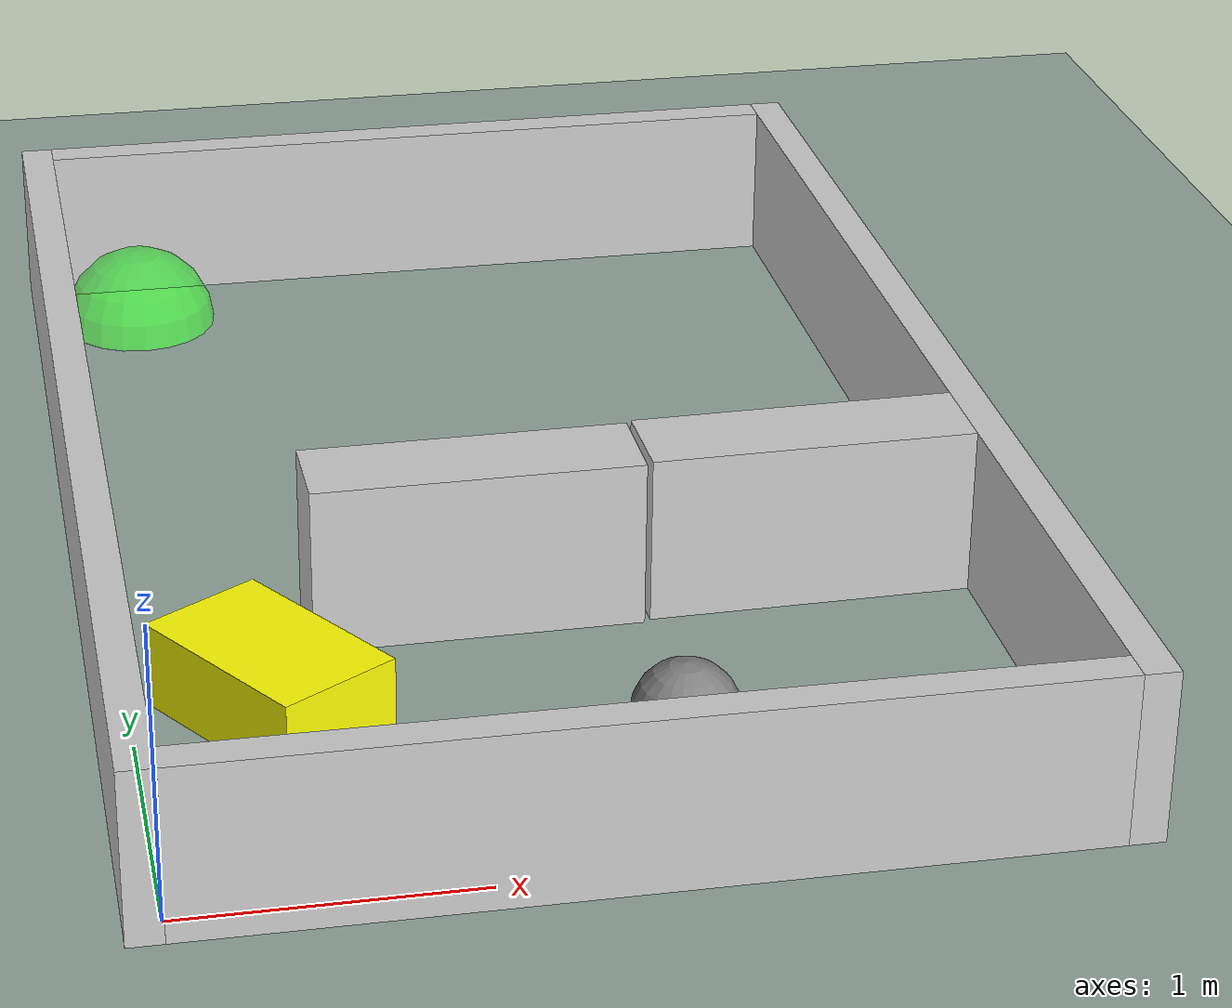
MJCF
<?xml version="1.0" ?>
<mujoco model="generated_environment">
  <option timestep="0.01" integrator="RK4" cone="elliptic"/>
  <default>
    <geom density="1"/>
  </default>
  <asset>
    <texture builtin="gradient" height="3072" rgb1="0.3 0.5 0.7" rgb2="0 0 0" type="skybox" width="512"/>
    <texture builtin="checker" height="300" mark="edge" markrgb="0.8 0.8 0.8" name="groundplane" rgb1="0.2 0.3 0.4" rgb2="0.1 0.2 0.3" type="2d" width="300"/>
    <material name="groundplane" reflectance="0.2" texrepeat="5 5" texture="groundplane" texuniform="true"/>
    <material name="robot" rgba="1.0 1.0 0.0 1.0"/>
  </asset>
  <worldbody>
    <light dir="0 0 -1" directional="true" pos="0 0 1.5"/>
    <geom condim="4" friction="0.5 0.005 0.001" material="groundplane" name="floor" size="0 0 0.05" type="plane"/>
    <body name="walls">
      <geom name="wall_1" condim="4" pos="-0.06 2.325 0.30000000000000004" friction="1 0.005 0.0001" rgba="0.800000011920929 0.800000011920929 0.800000011920929 1.0" size="0.06 2.4450000000000003 0.30000000000000004" type="box"/>
      <geom name="wall_2" condim="4" pos="3.0 2.325 0.30000000000000004" friction="1 0.005 0.0001" rgba="0.800000011920929 0.800000011920929 0.800000011920929 1.0" size="0.06 2.4450000000000003 0.30000000000000004" type="box"/>
      <geom name="wall_3" condim="4" pos="1.47 -0.06 0.30000000000000004" friction="1 0.005 0.0001" rgba="0.800000011920929 0.800000011920929 0.800000011920929 1.0" size="1.47 0.06 0.30000000000000004" type="box"/>
      <geom name="wall_4" condim="4" pos="1.47 4.71 0.30000000000000004" friction="1 0.005 0.0001" rgba="0.800000011920929 0.800000011920929 0.800000011920929 1.0" size="1.47 0.06 0.30000000000000004" type="box"/>
    </body>
    <body name="robot">
      <joint name="joint_x" type="slide" pos="0 0 0" axis="1 0 0"/>
      <joint name="joint_y" type="slide" pos="0 0 0" axis="0 1 0"/>
      <geom name="robot" type="sphere" pos="1.716084771734481 0.6018396559606507 0.18" size="0.18 0.18 0.18" mass="5.0" friction="1.0 0.005 0.0001" condim="4"/>
    </body>
    <body name="obstacle_1_movable">
      <geom name="obstacle_1_movable" condim="4" pos="0.4517539429583569 1.0802850502880832 0.15000000000000002" quat="0.9602008019673701 0 0 0.27931061544670893" friction="1 0.005 0.0001" rgba="1 1 0 1" size="0.22499999999999998 0.36 0.15000000000000002" type="box" mass="0.1"/>
      <joint type="free"/>
    </body>
    <body name="wall_5">
      <geom name="wall_5" condim="4" pos="1.211903939421437 1.6706067723077078 0.30000000000000004" quat="0.9999912113218877 0 0 0.004192526563267259" friction="1 0.005 0.0001" rgba="0.800000011920929 0.800000011920929 0.800000011920929 1.0" size="0.5700000000000001 0.165 0.30000000000000004" type="box"/>
    </body>
    <body name="wall_6">
      <geom name="wall_6" condim="4" pos="2.3876858059738058 1.701539021013748 0.30000000000000004" quat="0.7008494386573543 0 0 0.7133092347177845" friction="1 0.005 0.0001" rgba="0.800000011920929 0.800000011920929 0.800000011920929 1.0" size="0.165 0.585 0.30000000000000004" type="box"/>
    </body>
    <site name="goal" type="sphere" size="0.30000000000000004 0.30000000000000004 0.30000000000000004" rgba="0 1 0 0.5" pos="0.30000000000000004 4.35 0.0"/>
  </worldbody>
  <actuator>
    <velocity name="actuator_x" joint="joint_x" kv="50" ctrlrange="-0.5 0.5" forcerange="-20 20"/>
    <velocity name="actuator_y" joint="joint_y" kv="50" ctrlrange="-0.5 0.5" forcerange="-20 20"/>
  </actuator>
</mujoco>
